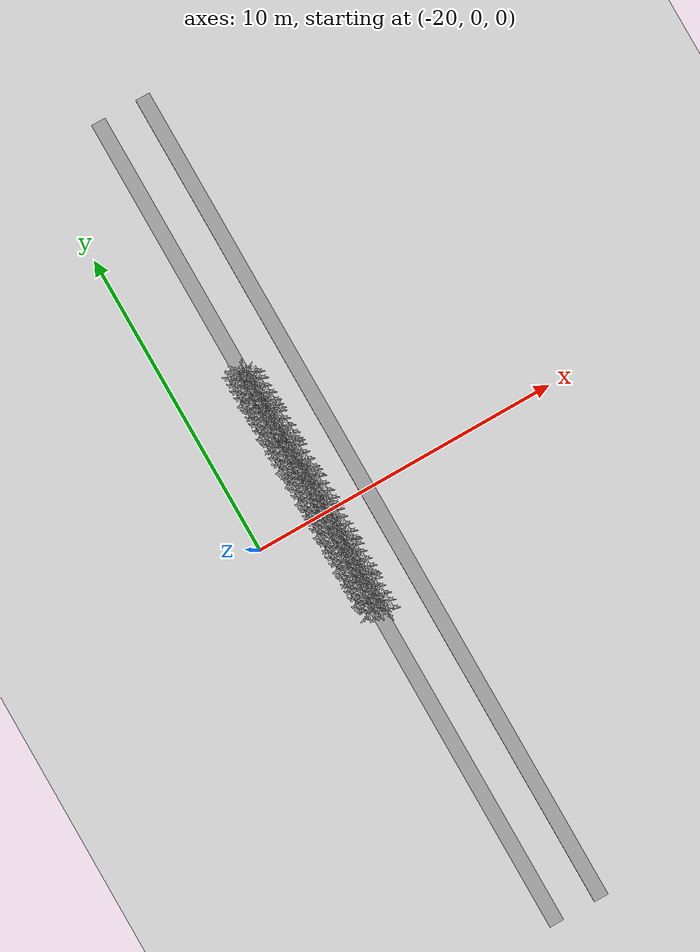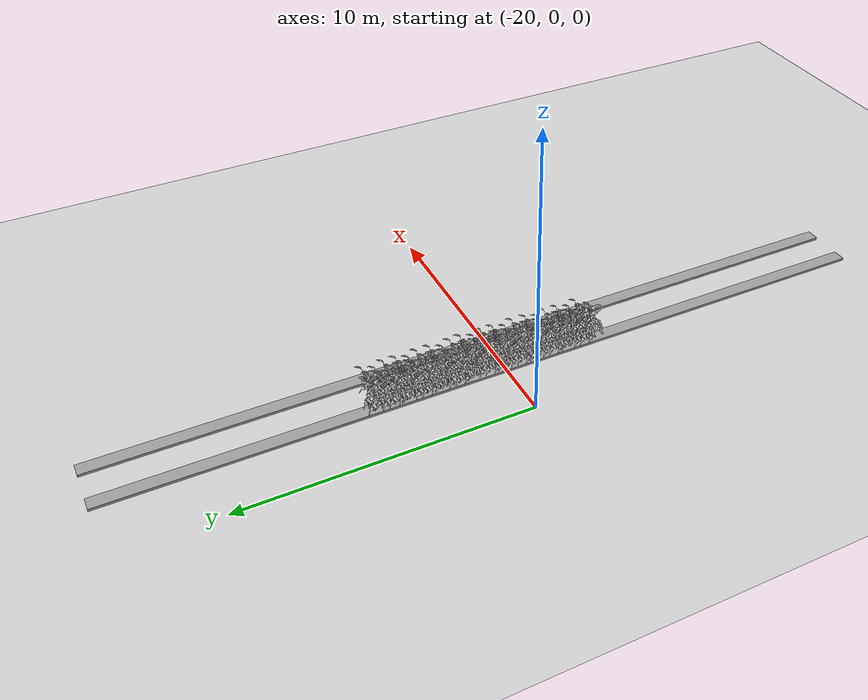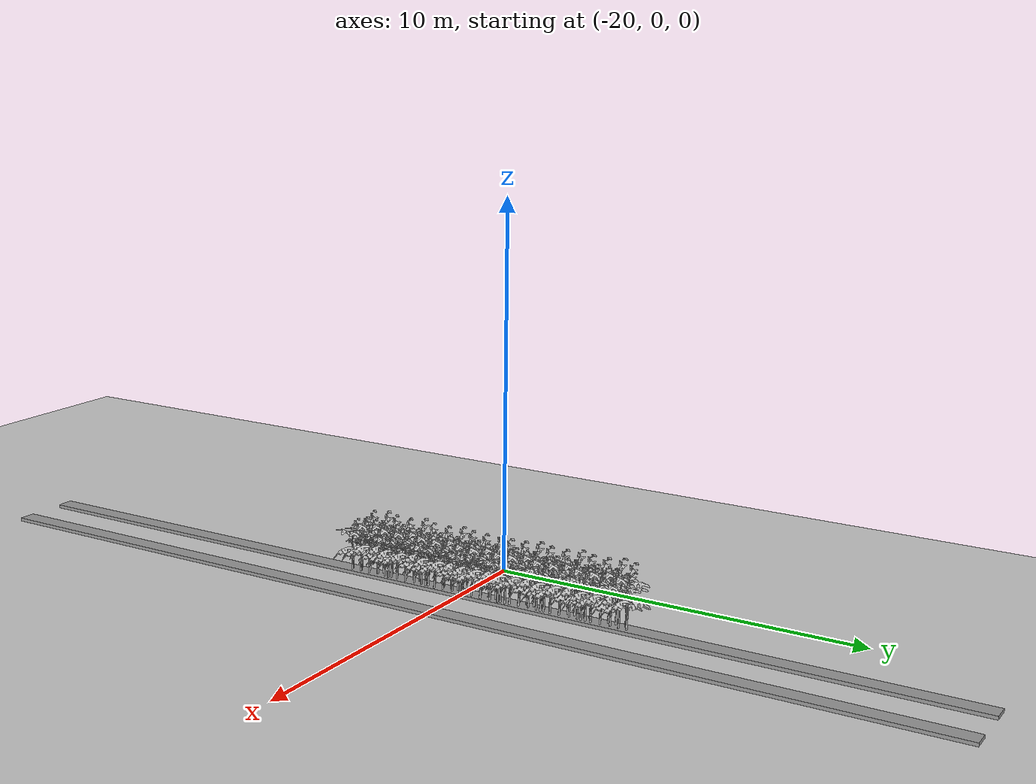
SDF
<sdf version="1.6">
 <world name="default">
  <model name="ground_plane">
   <static>1</static>
   <link name="link">
    <collision name="collision">
     <geometry><plane><normal>0 0 1</normal><size>100 100</size></plane></geometry>
     <surface>
      <contact><collide_bitmask>65535</collide_bitmask></contact>
      <friction><ode><mu>100</mu><mu2>50</mu2></ode></friction>
     </surface>
    </collision>
    <visual name="visual">
     <cast_shadows>0</cast_shadows>
     <geometry><plane><normal>0 0 1</normal><size>100 100</size></plane></geometry>
     <material>
      <script><uri>file://media/materials/scripts/gazebo.material</uri><name>Gazebo/Grey</name></script>
     </material>
    </visual>
   </link>
  </model>
  <model name="Box_24x15W">
   <link name="Wall">
    <pose>0 0 0.1985 0 -0 0</pose>
    <inertial>
     <mass>5</mass>
     <inertia><ixx>0.1022</ixx><iyy>0.2197</iyy><izz>0.1905</izz><ixy>0</ixy><ixz>0</ixz><iyz>0</iyz></inertia>
    </inertial>
    <collision name="Wall_Collision">
     <geometry><box><size>0.470639 27.6098 0.091294</size></box></geometry>
    </collision>
    <visual name="Wall_Visual">
     <geometry><box><size>0.470639 27.6098 0.091294</size></box></geometry>
     <material>
      <script><uri>file://media/materials/scripts/gazebo.material</uri><name>Gazebo/Grey</name></script>
      <ambient>1 1 1 1</ambient>
     </material>
    </visual>
   </link>
   <static>1</static>
   <pose>-17.8284 -0.233565 -0.139926 0 -0 0</pose>
  </model>
  <model name="Box_24x15W_clone">
   <link name="Wall">
    <pose>0 0 0.1985 0 -0 0</pose>
    <inertial>
     <mass>5</mass>
     <inertia><ixx>0.1022</ixx><iyy>0.2197</iyy><izz>0.1905</izz><ixy>0</ixy><ixz>0</ixz><iyz>0</iyz></inertia>
    </inertial>
    <collision name="Wall_Collision">
     <geometry><box><size>0.470639 27.6098 0.091294</size></box></geometry>
    </collision>
    <visual name="Wall_Visual">
     <geometry><box><size>0.470639 27.6098 0.091294</size></box></geometry>
     <material>
      <script><uri>file://media/materials/scripts/gazebo.material</uri><name>Gazebo/Grey</name></script>
      <ambient>1 1 1 1</ambient>
     </material>
    </visual>
   </link>
   <static>1</static>
   <pose>-16.3027 -0.233565 -0.139926 0 -0 0</pose>
  </model>
  <model name="Front_Plant_1_9">
   <model name="tomato_plant_medium">
    <static>1</static>
    <link name="link">
     <collision name="collision">
      <pose>0 0 0 1.5708 -0 0</pose>
      <geometry><mesh><scale>0.5 0.5 0.5</scale><uri>model://stick/meshes/stick.dae</uri></mesh></geometry>
     </collision>
     <visual name="visual">
      <geometry>
       <mesh><scale>5e-06 5e-06 6e-06</scale><uri>model://tomato_plant_medium/meshes/tomato-plant.dae</uri></mesh>
      </geometry>
     </visual>
    </link>
    <pose>0.087453 -0.595994 0.012396 0 -0 0</pose>
   </model>
   <model name="tomato_plant_medium_0">
    <static>1</static>
    <link name="link">
     <collision name="collision">
      <pose>0 0 0 1.5708 -0 0</pose>
      <geometry><mesh><scale>0.5 0.5 0.5</scale><uri>model://stick/meshes/stick.dae</uri></mesh></geometry>
     </collision>
     <visual name="visual">
      <geometry>
       <mesh><scale>5e-06 5e-06 6e-06</scale><uri>model://tomato_plant_medium/meshes/tomato-plant.dae</uri></mesh>
      </geometry>
     </visual>
    </link>
    <pose>-0.086166 -0.251822 0.012396 0 -0 0</pose>
   </model>
   <model name="tomato_plant_medium_1">
    <static>1</static>
    <link name="link">
     <collision name="collision">
      <pose>0 0 0 1.5708 -0 0</pose>
      <geometry><mesh><scale>0.5 0.5 0.5</scale><uri>model://stick/meshes/stick.dae</uri></mesh></geometry>
     </collision>
     <visual name="visual">
      <geometry>
       <mesh><scale>5e-06 5e-06 6e-06</scale><uri>model://tomato_plant_medium/meshes/tomato-plant.dae</uri></mesh>
      </geometry>
     </visual>
    </link>
    <pose>0.080199 0.118127 0.012396 0 -0 0</pose>
   </model>
   <model name="tomato_plant_small">
    <static>1</static>
    <link name="link">
     <collision name="collision">
      <pose>0 0 0 1.5708 -0 0</pose>
      <geometry><mesh><scale>0.5 0.45 0.5</scale><uri>model://stick/meshes/stick.dae</uri></mesh></geometry>
     </collision>
     <visual name="visual">
      <geometry>
       <mesh><scale>5e-06 5e-06 5e-06</scale><uri>model://tomato_plant_small/meshes/tomato-plant.dae</uri></mesh>
      </geometry>
     </visual>
    </link>
    <pose>0.099683 -1.12011 0.012396 0 -0 0</pose>
   </model>
   <model name="tomato_plant_small_0">
    <static>1</static>
    <link name="link">
     <collision name="collision">
      <pose>0 0 0 1.5708 -0 0</pose>
      <geometry><mesh><scale>0.5 0.45 0.5</scale><uri>model://stick/meshes/stick.dae</uri></mesh></geometry>
     </collision>
     <visual name="visual">
      <geometry>
       <mesh><scale>5e-06 5e-06 5e-06</scale><uri>model://tomato_plant_small/meshes/tomato-plant.dae</uri></mesh>
      </geometry>
     </visual>
    </link>
    <pose>-0.138771 -0.983982 0.012396 0 -0 0</pose>
   </model>
   <model name="tomato_plant_small_1">
    <static>1</static>
    <link name="link">
     <collision name="collision">
      <pose>0 0 0 1.5708 -0 0</pose>
      <geometry><mesh><scale>0.5 0.45 0.5</scale><uri>model://stick/meshes/stick.dae</uri></mesh></geometry>
     </collision>
     <visual name="visual">
      <geometry>
       <mesh><scale>5e-06 5e-06 5e-06</scale><uri>model://tomato_plant_small/meshes/tomato-plant.dae</uri></mesh>
      </geometry>
     </visual>
    </link>
    <pose>0.101334 -0.848814 0.012396 0 -0 0</pose>
   </model>
   <model name="tomato_plant_small_2">
    <static>1</static>
    <link name="link">
     <collision name="collision">
      <pose>0 0 0 1.5708 -0 0</pose>
      <geometry><mesh><scale>0.5 0.45 0.5</scale><uri>model://stick/meshes/stick.dae</uri></mesh></geometry>
     </collision>
     <visual name="visual">
      <geometry>
       <mesh><scale>5e-06 5e-06 5e-06</scale><uri>model://tomato_plant_small/meshes/tomato-plant.dae</uri></mesh>
      </geometry>
     </visual>
    </link>
    <pose>-0.103369 -0.683189 0.012396 0 -0 0</pose>
   </model>
   <model name="tomato_plant_small_3">
    <static>1</static>
    <link name="link">
     <collision name="collision">
      <pose>0 0 0 1.5708 -0 0</pose>
      <geometry><mesh><scale>0.5 0.45 0.5</scale><uri>model://stick/meshes/stick.dae</uri></mesh></geometry>
     </collision>
     <visual name="visual">
      <geometry>
       <mesh><scale>5e-06 5e-06 5e-06</scale><uri>model://tomato_plant_small/meshes/tomato-plant.dae</uri></mesh>
      </geometry>
     </visual>
    </link>
    <pose>-0.104381 -0.464811 0.012396 0 -0 0</pose>
   </model>
   <model name="tomato_plant_small_4">
    <static>1</static>
    <link name="link">
     <collision name="collision">
      <pose>0 0 0 1.5708 -0 0</pose>
      <geometry><mesh><scale>0.5 0.45 0.5</scale><uri>model://stick/meshes/stick.dae</uri></mesh></geometry>
     </collision>
     <visual name="visual">
      <geometry>
       <mesh><scale>5e-06 5e-06 5e-06</scale><uri>model://tomato_plant_small/meshes/tomato-plant.dae</uri></mesh>
      </geometry>
     </visual>
    </link>
    <pose>0.055604 -0.336879 0.012396 0 -0 0</pose>
   </model>
   <model name="tomato_plant_small_5">
    <static>1</static>
    <link name="link">
     <collision name="collision">
      <pose>0 0 0 1.5708 -0 0</pose>
      <geometry><mesh><scale>0.5 0.45 0.5</scale><uri>model://stick/meshes/stick.dae</uri></mesh></geometry>
     </collision>
     <visual name="visual">
      <geometry>
       <mesh><scale>5e-06 5e-06 5e-06</scale><uri>model://tomato_plant_small/meshes/tomato-plant.dae</uri></mesh>
      </geometry>
     </visual>
    </link>
    <pose>0.085059 -0.092572 0.012396 0 -0 0</pose>
   </model>
   <model name="tomato_plant_small_6">
    <static>1</static>
    <link name="link">
     <collision name="collision">
      <pose>0 0 0 1.5708 -0 0</pose>
      <geometry><mesh><scale>0.5 0.45 0.5</scale><uri>model://stick/meshes/stick.dae</uri></mesh></geometry>
     </collision>
     <visual name="visual">
      <geometry>
       <mesh><scale>5e-06 5e-06 5e-06</scale><uri>model://tomato_plant_small/meshes/tomato-plant.dae</uri></mesh>
      </geometry>
     </visual>
    </link>
    <pose>-0.096345 0.008888 0.012396 0 -0 0</pose>
   </model>
   <static>0</static>
   <pose>-17.809 -2.2215 0 0 -0 0</pose>
  </model>
  <model name="Front_Plant_1_10">
   <model name="tomato_plant_medium">
    <static>1</static>
    <link name="link">
     <collision name="collision">
      <pose>0 0 0 1.5708 -0 0</pose>
      <geometry><mesh><scale>0.5 0.5 0.5</scale><uri>model://stick/meshes/stick.dae</uri></mesh></geometry>
     </collision>
     <visual name="visual">
      <geometry>
       <mesh><scale>5e-06 5e-06 6e-06</scale><uri>model://tomato_plant_medium/meshes/tomato-plant.dae</uri></mesh>
      </geometry>
     </visual>
    </link>
    <pose>0.087453 -0.595994 0.012396 0 -0 0</pose>
   </model>
   <model name="tomato_plant_medium_0">
    <static>1</static>
    <link name="link">
     <collision name="collision">
      <pose>0 0 0 1.5708 -0 0</pose>
      <geometry><mesh><scale>0.5 0.5 0.5</scale><uri>model://stick/meshes/stick.dae</uri></mesh></geometry>
     </collision>
     <visual name="visual">
      <geometry>
       <mesh><scale>5e-06 5e-06 6e-06</scale><uri>model://tomato_plant_medium/meshes/tomato-plant.dae</uri></mesh>
      </geometry>
     </visual>
    </link>
    <pose>-0.086166 -0.251822 0.012396 0 -0 0</pose>
   </model>
   <model name="tomato_plant_medium_1">
    <static>1</static>
    <link name="link">
     <collision name="collision">
      <pose>0 0 0 1.5708 -0 0</pose>
      <geometry><mesh><scale>0.5 0.5 0.5</scale><uri>model://stick/meshes/stick.dae</uri></mesh></geometry>
     </collision>
     <visual name="visual">
      <geometry>
       <mesh><scale>5e-06 5e-06 6e-06</scale><uri>model://tomato_plant_medium/meshes/tomato-plant.dae</uri></mesh>
      </geometry>
     </visual>
    </link>
    <pose>0.080199 0.118127 0.012396 0 -0 0</pose>
   </model>
   <model name="tomato_plant_small">
    <static>1</static>
    <link name="link">
     <collision name="collision">
      <pose>0 0 0 1.5708 -0 0</pose>
      <geometry><mesh><scale>0.5 0.45 0.5</scale><uri>model://stick/meshes/stick.dae</uri></mesh></geometry>
     </collision>
     <visual name="visual">
      <geometry>
       <mesh><scale>5e-06 5e-06 5e-06</scale><uri>model://tomato_plant_small/meshes/tomato-plant.dae</uri></mesh>
      </geometry>
     </visual>
    </link>
    <pose>0.099683 -1.12011 0.012396 0 -0 0</pose>
   </model>
   <model name="tomato_plant_small_0">
    <static>1</static>
    <link name="link">
     <collision name="collision">
      <pose>0 0 0 1.5708 -0 0</pose>
      <geometry><mesh><scale>0.5 0.45 0.5</scale><uri>model://stick/meshes/stick.dae</uri></mesh></geometry>
     </collision>
     <visual name="visual">
      <geometry>
       <mesh><scale>5e-06 5e-06 5e-06</scale><uri>model://tomato_plant_small/meshes/tomato-plant.dae</uri></mesh>
      </geometry>
     </visual>
    </link>
    <pose>-0.138771 -0.983982 0.012396 0 -0 0</pose>
   </model>
   <model name="tomato_plant_small_1">
    <static>1</static>
    <link name="link">
     <collision name="collision">
      <pose>0 0 0 1.5708 -0 0</pose>
      <geometry><mesh><scale>0.5 0.45 0.5</scale><uri>model://stick/meshes/stick.dae</uri></mesh></geometry>
     </collision>
     <visual name="visual">
      <geometry>
       <mesh><scale>5e-06 5e-06 5e-06</scale><uri>model://tomato_plant_small/meshes/tomato-plant.dae</uri></mesh>
      </geometry>
     </visual>
    </link>
    <pose>0.101334 -0.848814 0.012396 0 -0 0</pose>
   </model>
   <model name="tomato_plant_small_2">
    <static>1</static>
    <link name="link">
     <collision name="collision">
      <pose>0 0 0 1.5708 -0 0</pose>
      <geometry><mesh><scale>0.5 0.45 0.5</scale><uri>model://stick/meshes/stick.dae</uri></mesh></geometry>
     </collision>
     <visual name="visual">
      <geometry>
       <mesh><scale>5e-06 5e-06 5e-06</scale><uri>model://tomato_plant_small/meshes/tomato-plant.dae</uri></mesh>
      </geometry>
     </visual>
    </link>
    <pose>-0.103369 -0.683189 0.012396 0 -0 0</pose>
   </model>
   <model name="tomato_plant_small_3">
    <static>1</static>
    <link name="link">
     <collision name="collision">
      <pose>0 0 0 1.5708 -0 0</pose>
      <geometry><mesh><scale>0.5 0.45 0.5</scale><uri>model://stick/meshes/stick.dae</uri></mesh></geometry>
     </collision>
     <visual name="visual">
      <geometry>
       <mesh><scale>5e-06 5e-06 5e-06</scale><uri>model://tomato_plant_small/meshes/tomato-plant.dae</uri></mesh>
      </geometry>
     </visual>
    </link>
    <pose>-0.104381 -0.464811 0.012396 0 -0 0</pose>
   </model>
   <model name="tomato_plant_small_4">
    <static>1</static>
    <link name="link">
     <collision name="collision">
      <pose>0 0 0 1.5708 -0 0</pose>
      <geometry><mesh><scale>0.5 0.45 0.5</scale><uri>model://stick/meshes/stick.dae</uri></mesh></geometry>
     </collision>
     <visual name="visual">
      <geometry>
       <mesh><scale>5e-06 5e-06 5e-06</scale><uri>model://tomato_plant_small/meshes/tomato-plant.dae</uri></mesh>
      </geometry>
     </visual>
    </link>
    <pose>0.055604 -0.336879 0.012396 0 -0 0</pose>
   </model>
   <model name="tomato_plant_small_5">
    <static>1</static>
    <link name="link">
     <collision name="collision">
      <pose>0 0 0 1.5708 -0 0</pose>
      <geometry><mesh><scale>0.5 0.45 0.5</scale><uri>model://stick/meshes/stick.dae</uri></mesh></geometry>
     </collision>
     <visual name="visual">
      <geometry>
       <mesh><scale>5e-06 5e-06 5e-06</scale><uri>model://tomato_plant_small/meshes/tomato-plant.dae</uri></mesh>
      </geometry>
     </visual>
    </link>
    <pose>0.085059 -0.092572 0.012396 0 -0 0</pose>
   </model>
   <model name="tomato_plant_small_6">
    <static>1</static>
    <link name="link">
     <collision name="collision">
      <pose>0 0 0 1.5708 -0 0</pose>
      <geometry><mesh><scale>0.5 0.45 0.5</scale><uri>model://stick/meshes/stick.dae</uri></mesh></geometry>
     </collision>
     <visual name="visual">
      <geometry>
       <mesh><scale>5e-06 5e-06 5e-06</scale><uri>model://tomato_plant_small/meshes/tomato-plant.dae</uri></mesh>
      </geometry>
     </visual>
    </link>
    <pose>-0.096345 0.008888 0.012396 0 -0 0</pose>
   </model>
   <static>0</static>
   <pose>-17.7911 -1.06207 0 0 -0 0</pose>
  </model>
  <model name="Front_Plant_1_11">
   <model name="tomato_plant_medium">
    <static>1</static>
    <link name="link">
     <collision name="collision">
      <pose>0 0 0 1.5708 -0 0</pose>
      <geometry><mesh><scale>0.5 0.5 0.5</scale><uri>model://stick/meshes/stick.dae</uri></mesh></geometry>
     </collision>
     <visual name="visual">
      <geometry>
       <mesh><scale>5e-06 5e-06 6e-06</scale><uri>model://tomato_plant_medium/meshes/tomato-plant.dae</uri></mesh>
      </geometry>
     </visual>
    </link>
    <pose>0.087453 -0.595994 0.012396 0 -0 0</pose>
   </model>
   <model name="tomato_plant_medium_0">
    <static>1</static>
    <link name="link">
     <collision name="collision">
      <pose>0 0 0 1.5708 -0 0</pose>
      <geometry><mesh><scale>0.5 0.5 0.5</scale><uri>model://stick/meshes/stick.dae</uri></mesh></geometry>
     </collision>
     <visual name="visual">
      <geometry>
       <mesh><scale>5e-06 5e-06 6e-06</scale><uri>model://tomato_plant_medium/meshes/tomato-plant.dae</uri></mesh>
      </geometry>
     </visual>
    </link>
    <pose>-0.086166 -0.251822 0.012396 0 -0 0</pose>
   </model>
   <model name="tomato_plant_medium_1">
    <static>1</static>
    <link name="link">
     <collision name="collision">
      <pose>0 0 0 1.5708 -0 0</pose>
      <geometry><mesh><scale>0.5 0.5 0.5</scale><uri>model://stick/meshes/stick.dae</uri></mesh></geometry>
     </collision>
     <visual name="visual">
      <geometry>
       <mesh><scale>5e-06 5e-06 6e-06</scale><uri>model://tomato_plant_medium/meshes/tomato-plant.dae</uri></mesh>
      </geometry>
     </visual>
    </link>
    <pose>0.080199 0.118127 0.012396 0 -0 0</pose>
   </model>
   <model name="tomato_plant_small">
    <static>1</static>
    <link name="link">
     <collision name="collision">
      <pose>0 0 0 1.5708 -0 0</pose>
      <geometry><mesh><scale>0.5 0.45 0.5</scale><uri>model://stick/meshes/stick.dae</uri></mesh></geometry>
     </collision>
     <visual name="visual">
      <geometry>
       <mesh><scale>5e-06 5e-06 5e-06</scale><uri>model://tomato_plant_small/meshes/tomato-plant.dae</uri></mesh>
      </geometry>
     </visual>
    </link>
    <pose>0.099683 -1.12011 0.012396 0 -0 0</pose>
   </model>
   <model name="tomato_plant_small_0">
    <static>1</static>
    <link name="link">
     <collision name="collision">
      <pose>0 0 0 1.5708 -0 0</pose>
      <geometry><mesh><scale>0.5 0.45 0.5</scale><uri>model://stick/meshes/stick.dae</uri></mesh></geometry>
     </collision>
     <visual name="visual">
      <geometry>
       <mesh><scale>5e-06 5e-06 5e-06</scale><uri>model://tomato_plant_small/meshes/tomato-plant.dae</uri></mesh>
      </geometry>
     </visual>
    </link>
    <pose>-0.138771 -0.983982 0.012396 0 -0 0</pose>
   </model>
   <model name="tomato_plant_small_1">
    <static>1</static>
    <link name="link">
     <collision name="collision">
      <pose>0 0 0 1.5708 -0 0</pose>
      <geometry><mesh><scale>0.5 0.45 0.5</scale><uri>model://stick/meshes/stick.dae</uri></mesh></geometry>
     </collision>
     <visual name="visual">
      <geometry>
       <mesh><scale>5e-06 5e-06 5e-06</scale><uri>model://tomato_plant_small/meshes/tomato-plant.dae</uri></mesh>
      </geometry>
     </visual>
    </link>
    <pose>0.101334 -0.848814 0.012396 0 -0 0</pose>
   </model>
   <model name="tomato_plant_small_2">
    <static>1</static>
    <link name="link">
     <collision name="collision">
      <pose>0 0 0 1.5708 -0 0</pose>
      <geometry><mesh><scale>0.5 0.45 0.5</scale><uri>model://stick/meshes/stick.dae</uri></mesh></geometry>
     </collision>
     <visual name="visual">
      <geometry>
       <mesh><scale>5e-06 5e-06 5e-06</scale><uri>model://tomato_plant_small/meshes/tomato-plant.dae</uri></mesh>
      </geometry>
     </visual>
    </link>
    <pose>-0.103369 -0.683189 0.012396 0 -0 0</pose>
   </model>
   <model name="tomato_plant_small_3">
    <static>1</static>
    <link name="link">
     <collision name="collision">
      <pose>0 0 0 1.5708 -0 0</pose>
      <geometry><mesh><scale>0.5 0.45 0.5</scale><uri>model://stick/meshes/stick.dae</uri></mesh></geometry>
     </collision>
     <visual name="visual">
      <geometry>
       <mesh><scale>5e-06 5e-06 5e-06</scale><uri>model://tomato_plant_small/meshes/tomato-plant.dae</uri></mesh>
      </geometry>
     </visual>
    </link>
    <pose>-0.104381 -0.464811 0.012396 0 -0 0</pose>
   </model>
   <model name="tomato_plant_small_4">
    <static>1</static>
    <link name="link">
     <collision name="collision">
      <pose>0 0 0 1.5708 -0 0</pose>
      <geometry><mesh><scale>0.5 0.45 0.5</scale><uri>model://stick/meshes/stick.dae</uri></mesh></geometry>
     </collision>
     <visual name="visual">
      <geometry>
       <mesh><scale>5e-06 5e-06 5e-06</scale><uri>model://tomato_plant_small/meshes/tomato-plant.dae</uri></mesh>
      </geometry>
     </visual>
    </link>
    <pose>0.055604 -0.336879 0.012396 0 -0 0</pose>
   </model>
   <model name="tomato_plant_small_5">
    <static>1</static>
    <link name="link">
     <collision name="collision">
      <pose>0 0 0 1.5708 -0 0</pose>
      <geometry><mesh><scale>0.5 0.45 0.5</scale><uri>model://stick/meshes/stick.dae</uri></mesh></geometry>
     </collision>
     <visual name="visual">
      <geometry>
       <mesh><scale>5e-06 5e-06 5e-06</scale><uri>model://tomato_plant_small/meshes/tomato-plant.dae</uri></mesh>
      </geometry>
     </visual>
    </link>
    <pose>0.085059 -0.092572 0.012396 0 -0 0</pose>
   </model>
   <model name="tomato_plant_small_6">
    <static>1</static>
    <link name="link">
     <collision name="collision">
      <pose>0 0 0 1.5708 -0 0</pose>
      <geometry><mesh><scale>0.5 0.45 0.5</scale><uri>model://stick/meshes/stick.dae</uri></mesh></geometry>
     </collision>
     <visual name="visual">
      <geometry>
       <mesh><scale>5e-06 5e-06 5e-06</scale><uri>model://tomato_plant_small/meshes/tomato-plant.dae</uri></mesh>
      </geometry>
     </visual>
    </link>
    <pose>-0.096345 0.008888 0.012396 0 -0 0</pose>
   </model>
   <static>0</static>
   <pose>-17.778 0.113181 0 0 -0 0</pose>
  </model>
  <model name="Front_Plant_1_12">
   <model name="tomato_plant_medium">
    <static>1</static>
    <link name="link">
     <collision name="collision">
      <pose>0 0 0 1.5708 -0 0</pose>
      <geometry><mesh><scale>0.5 0.5 0.5</scale><uri>model://stick/meshes/stick.dae</uri></mesh></geometry>
     </collision>
     <visual name="visual">
      <geometry>
       <mesh><scale>5e-06 5e-06 6e-06</scale><uri>model://tomato_plant_medium/meshes/tomato-plant.dae</uri></mesh>
      </geometry>
     </visual>
    </link>
    <pose>0.087453 -0.595994 0.012396 0 -0 0</pose>
   </model>
   <model name="tomato_plant_medium_0">
    <static>1</static>
    <link name="link">
     <collision name="collision">
      <pose>0 0 0 1.5708 -0 0</pose>
      <geometry><mesh><scale>0.5 0.5 0.5</scale><uri>model://stick/meshes/stick.dae</uri></mesh></geometry>
     </collision>
     <visual name="visual">
      <geometry>
       <mesh><scale>5e-06 5e-06 6e-06</scale><uri>model://tomato_plant_medium/meshes/tomato-plant.dae</uri></mesh>
      </geometry>
     </visual>
    </link>
    <pose>-0.086166 -0.251822 0.012396 0 -0 0</pose>
   </model>
   <model name="tomato_plant_medium_1">
    <static>1</static>
    <link name="link">
     <collision name="collision">
      <pose>0 0 0 1.5708 -0 0</pose>
      <geometry><mesh><scale>0.5 0.5 0.5</scale><uri>model://stick/meshes/stick.dae</uri></mesh></geometry>
     </collision>
     <visual name="visual">
      <geometry>
       <mesh><scale>5e-06 5e-06 6e-06</scale><uri>model://tomato_plant_medium/meshes/tomato-plant.dae</uri></mesh>
      </geometry>
     </visual>
    </link>
    <pose>0.080199 0.118127 0.012396 0 -0 0</pose>
   </model>
   <model name="tomato_plant_small">
    <static>1</static>
    <link name="link">
     <collision name="collision">
      <pose>0 0 0 1.5708 -0 0</pose>
      <geometry><mesh><scale>0.5 0.45 0.5</scale><uri>model://stick/meshes/stick.dae</uri></mesh></geometry>
     </collision>
     <visual name="visual">
      <geometry>
       <mesh><scale>5e-06 5e-06 5e-06</scale><uri>model://tomato_plant_small/meshes/tomato-plant.dae</uri></mesh>
      </geometry>
     </visual>
    </link>
    <pose>0.099683 -1.12011 0.012396 0 -0 0</pose>
   </model>
   <model name="tomato_plant_small_0">
    <static>1</static>
    <link name="link">
     <collision name="collision">
      <pose>0 0 0 1.5708 -0 0</pose>
      <geometry><mesh><scale>0.5 0.45 0.5</scale><uri>model://stick/meshes/stick.dae</uri></mesh></geometry>
     </collision>
     <visual name="visual">
      <geometry>
       <mesh><scale>5e-06 5e-06 5e-06</scale><uri>model://tomato_plant_small/meshes/tomato-plant.dae</uri></mesh>
      </geometry>
     </visual>
    </link>
    <pose>-0.138771 -0.983982 0.012396 0 -0 0</pose>
   </model>
   <model name="tomato_plant_small_1">
    <static>1</static>
    <link name="link">
     <collision name="collision">
      <pose>0 0 0 1.5708 -0 0</pose>
      <geometry><mesh><scale>0.5 0.45 0.5</scale><uri>model://stick/meshes/stick.dae</uri></mesh></geometry>
     </collision>
     <visual name="visual">
      <geometry>
       <mesh><scale>5e-06 5e-06 5e-06</scale><uri>model://tomato_plant_small/meshes/tomato-plant.dae</uri></mesh>
      </geometry>
     </visual>
    </link>
    <pose>0.101334 -0.848814 0.012396 0 -0 0</pose>
   </model>
   <model name="tomato_plant_small_2">
    <static>1</static>
    <link name="link">
     <collision name="collision">
      <pose>0 0 0 1.5708 -0 0</pose>
      <geometry><mesh><scale>0.5 0.45 0.5</scale><uri>model://stick/meshes/stick.dae</uri></mesh></geometry>
     </collision>
     <visual name="visual">
      <geometry>
       <mesh><scale>5e-06 5e-06 5e-06</scale><uri>model://tomato_plant_small/meshes/tomato-plant.dae</uri></mesh>
      </geometry>
     </visual>
    </link>
    <pose>-0.103369 -0.683189 0.012396 0 -0 0</pose>
   </model>
   <model name="tomato_plant_small_3">
    <static>1</static>
    <link name="link">
     <collision name="collision">
      <pose>0 0 0 1.5708 -0 0</pose>
      <geometry><mesh><scale>0.5 0.45 0.5</scale><uri>model://stick/meshes/stick.dae</uri></mesh></geometry>
     </collision>
     <visual name="visual">
      <geometry>
       <mesh><scale>5e-06 5e-06 5e-06</scale><uri>model://tomato_plant_small/meshes/tomato-plant.dae</uri></mesh>
      </geometry>
     </visual>
    </link>
    <pose>-0.104381 -0.464811 0.012396 0 -0 0</pose>
   </model>
   <model name="tomato_plant_small_4">
    <static>1</static>
    <link name="link">
     <collision name="collision">
      <pose>0 0 0 1.5708 -0 0</pose>
      <geometry><mesh><scale>0.5 0.45 0.5</scale><uri>model://stick/meshes/stick.dae</uri></mesh></geometry>
     </collision>
     <visual name="visual">
      <geometry>
       <mesh><scale>5e-06 5e-06 5e-06</scale><uri>model://tomato_plant_small/meshes/tomato-plant.dae</uri></mesh>
      </geometry>
     </visual>
    </link>
    <pose>0.055604 -0.336879 0.012396 0 -0 0</pose>
   </model>
   <model name="tomato_plant_small_5">
    <static>1</static>
    <link name="link">
     <collision name="collision">
      <pose>0 0 0 1.5708 -0 0</pose>
      <geometry><mesh><scale>0.5 0.45 0.5</scale><uri>model://stick/meshes/stick.dae</uri></mesh></geometry>
     </collision>
     <visual name="visual">
      <geometry>
       <mesh><scale>5e-06 5e-06 5e-06</scale><uri>model://tomato_plant_small/meshes/tomato-plant.dae</uri></mesh>
      </geometry>
     </visual>
    </link>
    <pose>0.085059 -0.092572 0.012396 0 -0 0</pose>
   </model>
   <model name="tomato_plant_small_6">
    <static>1</static>
    <link name="link">
     <collision name="collision">
      <pose>0 0 0 1.5708 -0 0</pose>
      <geometry><mesh><scale>0.5 0.45 0.5</scale><uri>model://stick/meshes/stick.dae</uri></mesh></geometry>
     </collision>
     <visual name="visual">
      <geometry>
       <mesh><scale>5e-06 5e-06 5e-06</scale><uri>model://tomato_plant_small/meshes/tomato-plant.dae</uri></mesh>
      </geometry>
     </visual>
    </link>
    <pose>-0.096345 0.008888 0.012396 0 -0 0</pose>
   </model>
   <static>0</static>
   <pose>-17.7586 1.24466 0 0 -0 0</pose>
  </model>
  <model name="Front_Plant_1_13">
   <model name="tomato_plant_medium">
    <static>1</static>
    <link name="link">
     <collision name="collision">
      <pose>0 0 0 1.5708 -0 0</pose>
      <geometry><mesh><scale>0.5 0.5 0.5</scale><uri>model://stick/meshes/stick.dae</uri></mesh></geometry>
     </collision>
     <visual name="visual">
      <geometry>
       <mesh><scale>5e-06 5e-06 6e-06</scale><uri>model://tomato_plant_medium/meshes/tomato-plant.dae</uri></mesh>
      </geometry>
     </visual>
    </link>
    <pose>0.087453 -0.595994 0.012396 0 -0 0</pose>
   </model>
   <model name="tomato_plant_medium_0">
    <static>1</static>
    <link name="link">
     <collision name="collision">
      <pose>0 0 0 1.5708 -0 0</pose>
      <geometry><mesh><scale>0.5 0.5 0.5</scale><uri>model://stick/meshes/stick.dae</uri></mesh></geometry>
     </collision>
     <visual name="visual">
      <geometry>
       <mesh><scale>5e-06 5e-06 6e-06</scale><uri>model://tomato_plant_medium/meshes/tomato-plant.dae</uri></mesh>
      </geometry>
     </visual>
    </link>
    <pose>-0.086166 -0.251822 0.012396 0 -0 0</pose>
   </model>
   <model name="tomato_plant_medium_1">
    <static>1</static>
    <link name="link">
     <collision name="collision">
      <pose>0 0 0 1.5708 -0 0</pose>
      <geometry><mesh><scale>0.5 0.5 0.5</scale><uri>model://stick/meshes/stick.dae</uri></mesh></geometry>
     </collision>
     <visual name="visual">
      <geometry>
       <mesh><scale>5e-06 5e-06 6e-06</scale><uri>model://tomato_plant_medium/meshes/tomato-plant.dae</uri></mesh>
      </geometry>
     </visual>
    </link>
    <pose>0.080199 0.118127 0.012396 0 -0 0</pose>
   </model>
   <model name="tomato_plant_small">
    <static>1</static>
    <link name="link">
     <collision name="collision">
      <pose>0 0 0 1.5708 -0 0</pose>
      <geometry><mesh><scale>0.5 0.45 0.5</scale><uri>model://stick/meshes/stick.dae</uri></mesh></geometry>
     </collision>
     <visual name="visual">
      <geometry>
       <mesh><scale>5e-06 5e-06 5e-06</scale><uri>model://tomato_plant_small/meshes/tomato-plant.dae</uri></mesh>
      </geometry>
     </visual>
    </link>
    <pose>0.099683 -1.12011 0.012396 0 -0 0</pose>
   </model>
   <model name="tomato_plant_small_0">
    <static>1</static>
    <link name="link">
     <collision name="collision">
      <pose>0 0 0 1.5708 -0 0</pose>
      <geometry><mesh><scale>0.5 0.45 0.5</scale><uri>model://stick/meshes/stick.dae</uri></mesh></geometry>
     </collision>
     <visual name="visual">
      <geometry>
       <mesh><scale>5e-06 5e-06 5e-06</scale><uri>model://tomato_plant_small/meshes/tomato-plant.dae</uri></mesh>
      </geometry>
     </visual>
    </link>
    <pose>-0.138771 -0.983982 0.012396 0 -0 0</pose>
   </model>
   <model name="tomato_plant_small_1">
    <static>1</static>
    <link name="link">
     <collision name="collision">
      <pose>0 0 0 1.5708 -0 0</pose>
      <geometry><mesh><scale>0.5 0.45 0.5</scale><uri>model://stick/meshes/stick.dae</uri></mesh></geometry>
     </collision>
     <visual name="visual">
      <geometry>
       <mesh><scale>5e-06 5e-06 5e-06</scale><uri>model://tomato_plant_small/meshes/tomato-plant.dae</uri></mesh>
      </geometry>
     </visual>
    </link>
    <pose>0.101334 -0.848814 0.012396 0 -0 0</pose>
   </model>
   <model name="tomato_plant_small_2">
    <static>1</static>
    <link name="link">
     <collision name="collision">
      <pose>0 0 0 1.5708 -0 0</pose>
      <geometry><mesh><scale>0.5 0.45 0.5</scale><uri>model://stick/meshes/stick.dae</uri></mesh></geometry>
     </collision>
     <visual name="visual">
      <geometry>
       <mesh><scale>5e-06 5e-06 5e-06</scale><uri>model://tomato_plant_small/meshes/tomato-plant.dae</uri></mesh>
      </geometry>
     </visual>
    </link>
    <pose>-0.103369 -0.683189 0.012396 0 -0 0</pose>
   </model>
   <model name="tomato_plant_small_3">
    <static>1</static>
    <link name="link">
     <collision name="collision">
      <pose>0 0 0 1.5708 -0 0</pose>
      <geometry><mesh><scale>0.5 0.45 0.5</scale><uri>model://stick/meshes/stick.dae</uri></mesh></geometry>
     </collision>
     <visual name="visual">
      <geometry>
       <mesh><scale>5e-06 5e-06 5e-06</scale><uri>model://tomato_plant_small/meshes/tomato-plant.dae</uri></mesh>
      </geometry>
     </visual>
    </link>
    <pose>-0.104381 -0.464811 0.012396 0 -0 0</pose>
   </model>
   <model name="tomato_plant_small_4">
    <static>1</static>
    <link name="link">
     <collision name="collision">
      <pose>0 0 0 1.5708 -0 0</pose>
      <geometry><mesh><scale>0.5 0.45 0.5</scale><uri>model://stick/meshes/stick.dae</uri></mesh></geometry>
     </collision>
     <visual name="visual">
      <geometry>
       <mesh><scale>5e-06 5e-06 5e-06</scale><uri>model://tomato_plant_small/meshes/tomato-plant.dae</uri></mesh>
      </geometry>
     </visual>
    </link>
    <pose>0.055604 -0.336879 0.012396 0 -0 0</pose>
   </model>
   <model name="tomato_plant_small_5">
    <static>1</static>
    <link name="link">
     <collision name="collision">
      <pose>0 0 0 1.5708 -0 0</pose>
      <geometry><mesh><scale>0.5 0.45 0.5</scale><uri>model://stick/meshes/stick.dae</uri></mesh></geometry>
     </collision>
     <visual name="visual">
      <geometry>
       <mesh><scale>5e-06 5e-06 5e-06</scale><uri>model://tomato_plant_small/meshes/tomato-plant.dae</uri></mesh>
      </geometry>
     </visual>
    </link>
    <pose>0.085059 -0.092572 0.012396 0 -0 0</pose>
   </model>
   <model name="tomato_plant_small_6">
    <static>1</static>
    <link name="link">
     <collision name="collision">
      <pose>0 0 0 1.5708 -0 0</pose>
      <geometry><mesh><scale>0.5 0.45 0.5</scale><uri>model://stick/meshes/stick.dae</uri></mesh></geometry>
     </collision>
     <visual name="visual">
      <geometry>
       <mesh><scale>5e-06 5e-06 5e-06</scale><uri>model://tomato_plant_small/meshes/tomato-plant.dae</uri></mesh>
      </geometry>
     </visual>
    </link>
    <pose>-0.096345 0.008888 0.012396 0 -0 0</pose>
   </model>
   <static>0</static>
   <pose>-17.8003 2.33856 0 0 -0 0</pose>
  </model>
  <model name="Front_Plant_1_14">
   <model name="tomato_plant_medium">
    <static>1</static>
    <link name="link">
     <collision name="collision">
      <pose>0 0 0 1.5708 -0 0</pose>
      <geometry><mesh><scale>0.5 0.5 0.5</scale><uri>model://stick/meshes/stick.dae</uri></mesh></geometry>
     </collision>
     <visual name="visual">
      <geometry>
       <mesh><scale>5e-06 5e-06 6e-06</scale><uri>model://tomato_plant_medium/meshes/tomato-plant.dae</uri></mesh>
      </geometry>
     </visual>
    </link>
    <pose>0.087453 -0.595994 0.012396 0 -0 0</pose>
   </model>
   <model name="tomato_plant_medium_0">
    <static>1</static>
    <link name="link">
     <collision name="collision">
      <pose>0 0 0 1.5708 -0 0</pose>
      <geometry><mesh><scale>0.5 0.5 0.5</scale><uri>model://stick/meshes/stick.dae</uri></mesh></geometry>
     </collision>
     <visual name="visual">
      <geometry>
       <mesh><scale>5e-06 5e-06 6e-06</scale><uri>model://tomato_plant_medium/meshes/tomato-plant.dae</uri></mesh>
      </geometry>
     </visual>
    </link>
    <pose>-0.086166 -0.251822 0.012396 0 -0 0</pose>
   </model>
   <model name="tomato_plant_medium_1">
    <static>1</static>
    <link name="link">
     <collision name="collision">
      <pose>0 0 0 1.5708 -0 0</pose>
      <geometry><mesh><scale>0.5 0.5 0.5</scale><uri>model://stick/meshes/stick.dae</uri></mesh></geometry>
     </collision>
     <visual name="visual">
      <geometry>
       <mesh><scale>5e-06 5e-06 6e-06</scale><uri>model://tomato_plant_medium/meshes/tomato-plant.dae</uri></mesh>
      </geometry>
     </visual>
    </link>
    <pose>0.080199 0.118127 0.012396 0 -0 0</pose>
   </model>
   <model name="tomato_plant_small">
    <static>1</static>
    <link name="link">
     <collision name="collision">
      <pose>0 0 0 1.5708 -0 0</pose>
      <geometry><mesh><scale>0.5 0.45 0.5</scale><uri>model://stick/meshes/stick.dae</uri></mesh></geometry>
     </collision>
     <visual name="visual">
      <geometry>
       <mesh><scale>5e-06 5e-06 5e-06</scale><uri>model://tomato_plant_small/meshes/tomato-plant.dae</uri></mesh>
      </geometry>
     </visual>
    </link>
    <pose>0.099683 -1.12011 0.012396 0 -0 0</pose>
   </model>
   <model name="tomato_plant_small_0">
    <static>1</static>
    <link name="link">
     <collision name="collision">
      <pose>0 0 0 1.5708 -0 0</pose>
      <geometry><mesh><scale>0.5 0.45 0.5</scale><uri>model://stick/meshes/stick.dae</uri></mesh></geometry>
     </collision>
     <visual name="visual">
      <geometry>
       <mesh><scale>5e-06 5e-06 5e-06</scale><uri>model://tomato_plant_small/meshes/tomato-plant.dae</uri></mesh>
      </geometry>
     </visual>
    </link>
    <pose>-0.138771 -0.983982 0.012396 0 -0 0</pose>
   </model>
   <model name="tomato_plant_small_1">
    <static>1</static>
    <link name="link">
     <collision name="collision">
      <pose>0 0 0 1.5708 -0 0</pose>
      <geometry><mesh><scale>0.5 0.45 0.5</scale><uri>model://stick/meshes/stick.dae</uri></mesh></geometry>
     </collision>
     <visual name="visual">
      <geometry>
       <mesh><scale>5e-06 5e-06 5e-06</scale><uri>model://tomato_plant_small/meshes/tomato-plant.dae</uri></mesh>
      </geometry>
     </visual>
    </link>
    <pose>0.101334 -0.848814 0.012396 0 -0 0</pose>
   </model>
   <model name="tomato_plant_small_2">
    <static>1</static>
    <link name="link">
     <collision name="collision">
      <pose>0 0 0 1.5708 -0 0</pose>
      <geometry><mesh><scale>0.5 0.45 0.5</scale><uri>model://stick/meshes/stick.dae</uri></mesh></geometry>
     </collision>
     <visual name="visual">
      <geometry>
       <mesh><scale>5e-06 5e-06 5e-06</scale><uri>model://tomato_plant_small/meshes/tomato-plant.dae</uri></mesh>
      </geometry>
     </visual>
    </link>
    <pose>-0.103369 -0.683189 0.012396 0 -0 0</pose>
   </model>
   <model name="tomato_plant_small_3">
    <static>1</static>
    <link name="link">
     <collision name="collision">
      <pose>0 0 0 1.5708 -0 0</pose>
      <geometry><mesh><scale>0.5 0.45 0.5</scale><uri>model://stick/meshes/stick.dae</uri></mesh></geometry>
     </collision>
     <visual name="visual">
      <geometry>
       <mesh><scale>5e-06 5e-06 5e-06</scale><uri>model://tomato_plant_small/meshes/tomato-plant.dae</uri></mesh>
      </geometry>
     </visual>
    </link>
    <pose>-0.104381 -0.464811 0.012396 0 -0 0</pose>
   </model>
   <model name="tomato_plant_small_4">
    <static>1</static>
    <link name="link">
     <collision name="collision">
      <pose>0 0 0 1.5708 -0 0</pose>
      <geometry><mesh><scale>0.5 0.45 0.5</scale><uri>model://stick/meshes/stick.dae</uri></mesh></geometry>
     </collision>
     <visual name="visual">
      <geometry>
       <mesh><scale>5e-06 5e-06 5e-06</scale><uri>model://tomato_plant_small/meshes/tomato-plant.dae</uri></mesh>
      </geometry>
     </visual>
    </link>
    <pose>0.055604 -0.336879 0.012396 0 -0 0</pose>
   </model>
   <model name="tomato_plant_small_5">
    <static>1</static>
    <link name="link">
     <collision name="collision">
      <pose>0 0 0 1.5708 -0 0</pose>
      <geometry><mesh><scale>0.5 0.45 0.5</scale><uri>model://stick/meshes/stick.dae</uri></mesh></geometry>
     </collision>
     <visual name="visual">
      <geometry>
       <mesh><scale>5e-06 5e-06 5e-06</scale><uri>model://tomato_plant_small/meshes/tomato-plant.dae</uri></mesh>
      </geometry>
     </visual>
    </link>
    <pose>0.085059 -0.092572 0.012396 0 -0 0</pose>
   </model>
   <model name="tomato_plant_small_6">
    <static>1</static>
    <link name="link">
     <collision name="collision">
      <pose>0 0 0 1.5708 -0 0</pose>
      <geometry><mesh><scale>0.5 0.45 0.5</scale><uri>model://stick/meshes/stick.dae</uri></mesh></geometry>
     </collision>
     <visual name="visual">
      <geometry>
       <mesh><scale>5e-06 5e-06 5e-06</scale><uri>model://tomato_plant_small/meshes/tomato-plant.dae</uri></mesh>
      </geometry>
     </visual>
    </link>
    <pose>-0.096345 0.008888 0.012396 0 -0 0</pose>
   </model>
   <static>0</static>
   <pose>-17.7995 3.4928 0 0 -0 0</pose>
  </model>
  <model name="Front_Plant_1_15">
   <model name="tomato_plant_medium">
    <static>1</static>
    <link name="link">
     <collision name="collision">
      <pose>0 0 0 1.5708 -0 0</pose>
      <geometry><mesh><scale>0.5 0.5 0.5</scale><uri>model://stick/meshes/stick.dae</uri></mesh></geometry>
     </collision>
     <visual name="visual">
      <geometry>
       <mesh><scale>5e-06 5e-06 6e-06</scale><uri>model://tomato_plant_medium/meshes/tomato-plant.dae</uri></mesh>
      </geometry>
     </visual>
    </link>
    <pose>0.087453 -0.595994 0.012396 0 -0 0</pose>
   </model>
   <model name="tomato_plant_medium_0">
    <static>1</static>
    <link name="link">
     <collision name="collision">
      <pose>0 0 0 1.5708 -0 0</pose>
      <geometry><mesh><scale>0.5 0.5 0.5</scale><uri>model://stick/meshes/stick.dae</uri></mesh></geometry>
     </collision>
     <visual name="visual">
      <geometry>
       <mesh><scale>5e-06 5e-06 6e-06</scale><uri>model://tomato_plant_medium/meshes/tomato-plant.dae</uri></mesh>
      </geometry>
     </visual>
    </link>
    <pose>-0.086166 -0.251822 0.012396 0 -0 0</pose>
   </model>
   <model name="tomato_plant_medium_1">
    <static>1</static>
    <link name="link">
     <collision name="collision">
      <pose>0 0 0 1.5708 -0 0</pose>
      <geometry><mesh><scale>0.5 0.5 0.5</scale><uri>model://stick/meshes/stick.dae</uri></mesh></geometry>
     </collision>
     <visual name="visual">
      <geometry>
       <mesh><scale>5e-06 5e-06 6e-06</scale><uri>model://tomato_plant_medium/meshes/tomato-plant.dae</uri></mesh>
      </geometry>
     </visual>
    </link>
    <pose>0.080199 0.118127 0.012396 0 -0 0</pose>
   </model>
   <model name="tomato_plant_small">
    <static>1</static>
    <link name="link">
     <collision name="collision">
      <pose>0 0 0 1.5708 -0 0</pose>
      <geometry><mesh><scale>0.5 0.45 0.5</scale><uri>model://stick/meshes/stick.dae</uri></mesh></geometry>
     </collision>
     <visual name="visual">
      <geometry>
       <mesh><scale>5e-06 5e-06 5e-06</scale><uri>model://tomato_plant_small/meshes/tomato-plant.dae</uri></mesh>
      </geometry>
     </visual>
    </link>
    <pose>0.099683 -1.12011 0.012396 0 -0 0</pose>
   </model>
   <model name="tomato_plant_small_0">
    <static>1</static>
    <link name="link">
     <collision name="collision">
      <pose>0 0 0 1.5708 -0 0</pose>
      <geometry><mesh><scale>0.5 0.45 0.5</scale><uri>model://stick/meshes/stick.dae</uri></mesh></geometry>
     </collision>
     <visual name="visual">
      <geometry>
       <mesh><scale>5e-06 5e-06 5e-06</scale><uri>model://tomato_plant_small/meshes/tomato-plant.dae</uri></mesh>
      </geometry>
     </visual>
    </link>
    <pose>-0.138771 -0.983982 0.012396 0 -0 0</pose>
   </model>
   <model name="tomato_plant_small_1">
    <static>1</static>
    <link name="link">
     <collision name="collision">
      <pose>0 0 0 1.5708 -0 0</pose>
      <geometry><mesh><scale>0.5 0.45 0.5</scale><uri>model://stick/meshes/stick.dae</uri></mesh></geometry>
     </collision>
     <visual name="visual">
      <geometry>
       <mesh><scale>5e-06 5e-06 5e-06</scale><uri>model://tomato_plant_small/meshes/tomato-plant.dae</uri></mesh>
      </geometry>
     </visual>
    </link>
    <pose>0.101334 -0.848814 0.012396 0 -0 0</pose>
   </model>
   <model name="tomato_plant_small_2">
    <static>1</static>
    <link name="link">
     <collision name="collision">
      <pose>0 0 0 1.5708 -0 0</pose>
      <geometry><mesh><scale>0.5 0.45 0.5</scale><uri>model://stick/meshes/stick.dae</uri></mesh></geometry>
     </collision>
     <visual name="visual">
      <geometry>
       <mesh><scale>5e-06 5e-06 5e-06</scale><uri>model://tomato_plant_small/meshes/tomato-plant.dae</uri></mesh>
      </geometry>
     </visual>
    </link>
    <pose>-0.103369 -0.683189 0.012396 0 -0 0</pose>
   </model>
   <model name="tomato_plant_small_3">
    <static>1</static>
    <link name="link">
     <collision name="collision">
      <pose>0 0 0 1.5708 -0 0</pose>
      <geometry><mesh><scale>0.5 0.45 0.5</scale><uri>model://stick/meshes/stick.dae</uri></mesh></geometry>
     </collision>
     <visual name="visual">
      <geometry>
       <mesh><scale>5e-06 5e-06 5e-06</scale><uri>model://tomato_plant_small/meshes/tomato-plant.dae</uri></mesh>
      </geometry>
     </visual>
    </link>
    <pose>-0.104381 -0.464811 0.012396 0 -0 0</pose>
   </model>
   <model name="tomato_plant_small_4">
    <static>1</static>
    <link name="link">
     <collision name="collision">
      <pose>0 0 0 1.5708 -0 0</pose>
      <geometry><mesh><scale>0.5 0.45 0.5</scale><uri>model://stick/meshes/stick.dae</uri></mesh></geometry>
     </collision>
     <visual name="visual">
      <geometry>
       <mesh><scale>5e-06 5e-06 5e-06</scale><uri>model://tomato_plant_small/meshes/tomato-plant.dae</uri></mesh>
      </geometry>
     </visual>
    </link>
    <pose>0.055604 -0.336879 0.012396 0 -0 0</pose>
   </model>
   <model name="tomato_plant_small_5">
    <static>1</static>
    <link name="link">
     <collision name="collision">
      <pose>0 0 0 1.5708 -0 0</pose>
      <geometry><mesh><scale>0.5 0.45 0.5</scale><uri>model://stick/meshes/stick.dae</uri></mesh></geometry>
     </collision>
     <visual name="visual">
      <geometry>
       <mesh><scale>5e-06 5e-06 5e-06</scale><uri>model://tomato_plant_small/meshes/tomato-plant.dae</uri></mesh>
      </geometry>
     </visual>
    </link>
    <pose>0.085059 -0.092572 0.012396 0 -0 0</pose>
   </model>
   <model name="tomato_plant_small_6">
    <static>1</static>
    <link name="link">
     <collision name="collision">
      <pose>0 0 0 1.5708 -0 0</pose>
      <geometry><mesh><scale>0.5 0.45 0.5</scale><uri>model://stick/meshes/stick.dae</uri></mesh></geometry>
     </collision>
     <visual name="visual">
      <geometry>
       <mesh><scale>5e-06 5e-06 5e-06</scale><uri>model://tomato_plant_small/meshes/tomato-plant.dae</uri></mesh>
      </geometry>
     </visual>
    </link>
    <pose>-0.096345 0.008888 0.012396 0 -0 0</pose>
   </model>
   <static>0</static>
   <pose>-17.8019 4.61623 0 0 -0 0</pose>
  </model>
 </world>
</sdf>
